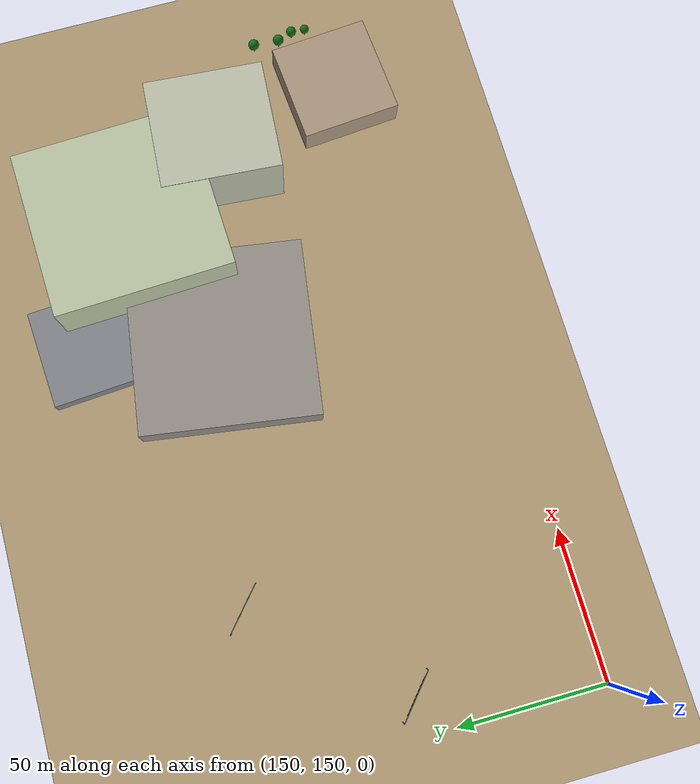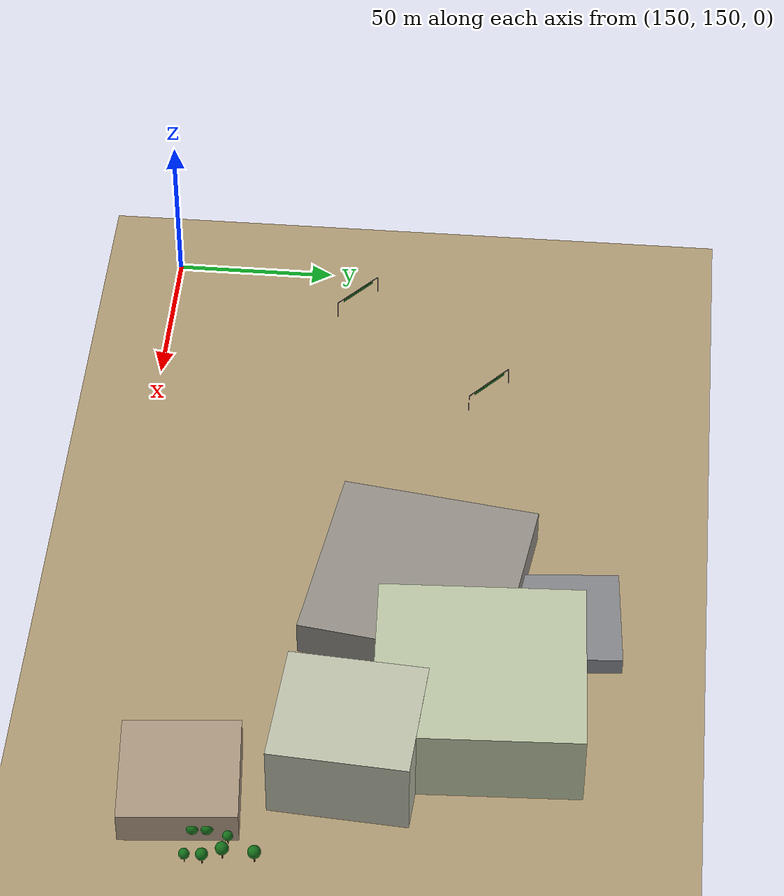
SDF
<sdf version="1.9">
 <world name="crossroad_world">
  <model name="ground_plane">
   <static>true</static>
   <pose>0 0 -0.05 0 0 0</pose>
   <link name="link">
    <collision name="collision">
     <geometry><plane><normal>0 0 1</normal><size>10000 10000</size></plane></geometry>
    </collision>
    <visual name="visual">
     <geometry><plane><normal>0 0 1</normal><size>15000 15000</size></plane></geometry>
     <material><ambient>0.68 0.60 0.45 1</ambient><diffuse>0.68 0.60 0.45 1</diffuse></material>
    </visual>
   </link>
  </model>
  <model name="gantry_70">
   <static>true</static>
   <pose>163.044 209.861 0 0 0 2.421</pose>
   <link name="link">
    <visual name="post_l">
     <pose>-8.900 0 2.925 0 0 0</pose>
     <geometry><cylinder><radius>0.1</radius><length>5.85</length></cylinder></geometry>
     <material><ambient>0.30 0.30 0.35 1</ambient><diffuse>0.30 0.30 0.35 1</diffuse></material>
    </visual>
    <visual name="post_r">
     <pose>8.900 0 2.925 0 0 0</pose>
     <geometry><cylinder><radius>0.1</radius><length>5.85</length></cylinder></geometry>
     <material><ambient>0.30 0.30 0.35 1</ambient><diffuse>0.30 0.30 0.35 1</diffuse></material>
    </visual>
    <visual name="beam">
     <pose>0 0 6.000 0 0 0</pose>
     <geometry><box><size>17.800 0.22 0.22</size></box></geometry>
     <material><ambient>0.30 0.30 0.35 1</ambient><diffuse>0.30 0.30 0.35 1</diffuse></material>
    </visual>
    <visual name="sign_border">
     <pose>0 -0.14 5.450 0 0 0</pose>
     <geometry><box><size>12.896 0.04 0.92</size></box></geometry>
     <material><ambient>0.90 0.85 0.10 1</ambient><diffuse>0.90 0.85 0.10 1</diffuse></material>
    </visual>
    <visual name="sign_panel">
     <pose>0 -0.15 5.450 0 0 0</pose>
     <geometry><box><size>12.816 0.05 0.86</size></box></geometry>
     <material><ambient>0.05 0.38 0.10 1</ambient><diffuse>0.05 0.38 0.10 1</diffuse></material>
    </visual>
    <collision name="col_post_l">
     <pose>-8.900 0 2.925 0 0 0</pose>
     <geometry><cylinder><radius>0.1</radius><length>5.85</length></cylinder></geometry>
    </collision>
    <collision name="col_post_r">
     <pose>8.900 0 2.925 0 0 0</pose>
     <geometry><cylinder><radius>0.1</radius><length>5.85</length></cylinder></geometry>
    </collision>
    <collision name="col_beam">
     <pose>0 0 6.000 0 0 0</pose>
     <geometry><box><size>17.800 0.22 0.22</size></box></geometry>
    </collision>
   </link>
  </model>
  <model name="gantry_71">
   <static>true</static>
   <pose>202.616 254.962 0 0 0 2.421</pose>
   <link name="link">
    <visual name="post_l">
     <pose>-8.900 0 2.925 0 0 0</pose>
     <geometry><cylinder><radius>0.1</radius><length>5.85</length></cylinder></geometry>
     <material><ambient>0.30 0.30 0.35 1</ambient><diffuse>0.30 0.30 0.35 1</diffuse></material>
    </visual>
    <visual name="post_r">
     <pose>8.900 0 2.925 0 0 0</pose>
     <geometry><cylinder><radius>0.1</radius><length>5.85</length></cylinder></geometry>
     <material><ambient>0.30 0.30 0.35 1</ambient><diffuse>0.30 0.30 0.35 1</diffuse></material>
    </visual>
    <visual name="beam">
     <pose>0 0 6.000 0 0 0</pose>
     <geometry><box><size>17.800 0.22 0.22</size></box></geometry>
     <material><ambient>0.30 0.30 0.35 1</ambient><diffuse>0.30 0.30 0.35 1</diffuse></material>
    </visual>
    <visual name="sign_border">
     <pose>0 -0.14 5.450 0 0 0</pose>
     <geometry><box><size>12.896 0.04 0.92</size></box></geometry>
     <material><ambient>0.90 0.85 0.10 1</ambient><diffuse>0.90 0.85 0.10 1</diffuse></material>
    </visual>
    <visual name="sign_panel">
     <pose>0 -0.15 5.450 0 0 0</pose>
     <geometry><box><size>12.816 0.05 0.86</size></box></geometry>
     <material><ambient>0.05 0.38 0.10 1</ambient><diffuse>0.05 0.38 0.10 1</diffuse></material>
    </visual>
    <collision name="col_post_l">
     <pose>-8.900 0 2.925 0 0 0</pose>
     <geometry><cylinder><radius>0.1</radius><length>5.85</length></cylinder></geometry>
    </collision>
    <collision name="col_post_r">
     <pose>8.900 0 2.925 0 0 0</pose>
     <geometry><cylinder><radius>0.1</radius><length>5.85</length></cylinder></geometry>
    </collision>
    <collision name="col_beam">
     <pose>0 0 6.000 0 0 0</pose>
     <geometry><box><size>17.800 0.22 0.22</size></box></geometry>
    </collision>
   </link>
  </model>
  <model name="tree_159">
   <static>true</static>
   <pose>379.648 188.375 0 0 0 0</pose>
   <link name="link">
    <visual name="trunk">
     <pose>0 0 1.375 0 0 0</pose>
     <geometry><cylinder><radius>0.120</radius><length>2.750</length></cylinder></geometry>
     <material><ambient>0.38 0.22 0.08 1</ambient><diffuse>0.38 0.22 0.08 1</diffuse></material>
    </visual>
    <visual name="canopy">
     <pose>0 0 3.812 0 0 0</pose>
     <geometry><sphere><radius>1.633</radius></sphere></geometry>
     <material><ambient>0.08 0.44 0.10 1</ambient><diffuse>0.08 0.44 0.10 1</diffuse></material>
    </visual>
    <collision name="col">
     <pose>0 0 1.375 0 0 0</pose>
     <geometry><cylinder><radius>0.120</radius><length>2.750</length></cylinder></geometry>
    </collision>
   </link>
  </model>
  <model name="tree_160">
   <static>true</static>
   <pose>385.208 183.469 0 0 0 0</pose>
   <link name="link">
    <visual name="trunk">
     <pose>0 0 1.648 0 0 0</pose>
     <geometry><cylinder><radius>0.144</radius><length>3.296</length></cylinder></geometry>
     <material><ambient>0.38 0.22 0.08 1</ambient><diffuse>0.38 0.22 0.08 1</diffuse></material>
    </visual>
    <visual name="canopy">
     <pose>0 0 4.568 0 0 0</pose>
     <geometry><sphere><radius>1.957</radius></sphere></geometry>
     <material><ambient>0.08 0.44 0.10 1</ambient><diffuse>0.08 0.44 0.10 1</diffuse></material>
    </visual>
    <collision name="col">
     <pose>0 0 1.648 0 0 0</pose>
     <geometry><cylinder><radius>0.144</radius><length>3.296</length></cylinder></geometry>
    </collision>
   </link>
  </model>
  <model name="tree_161">
   <static>true</static>
   <pose>384.889 187.532 0 0 0 0</pose>
   <link name="link">
    <visual name="trunk">
     <pose>0 0 1.640 0 0 0</pose>
     <geometry><cylinder><radius>0.144</radius><length>3.280</length></cylinder></geometry>
     <material><ambient>0.38 0.22 0.08 1</ambient><diffuse>0.38 0.22 0.08 1</diffuse></material>
    </visual>
    <visual name="canopy">
     <pose>0 0 4.546 0 0 0</pose>
     <geometry><sphere><radius>1.948</radius></sphere></geometry>
     <material><ambient>0.08 0.44 0.10 1</ambient><diffuse>0.08 0.44 0.10 1</diffuse></material>
    </visual>
    <collision name="col">
     <pose>0 0 1.640 0 0 0</pose>
     <geometry><cylinder><radius>0.144</radius><length>3.280</length></cylinder></geometry>
    </collision>
   </link>
  </model>
  <model name="tree_162">
   <static>true</static>
   <pose>386.394 193.479 0 0 0 0</pose>
   <link name="link">
    <visual name="trunk">
     <pose>0 0 1.240 0 0 0</pose>
     <geometry><cylinder><radius>0.108</radius><length>2.480</length></cylinder></geometry>
     <material><ambient>0.38 0.22 0.08 1</ambient><diffuse>0.38 0.22 0.08 1</diffuse></material>
    </visual>
    <visual name="canopy">
     <pose>0 0 3.437 0 0 0</pose>
     <geometry><sphere><radius>1.472</radius></sphere></geometry>
     <material><ambient>0.08 0.44 0.10 1</ambient><diffuse>0.08 0.44 0.10 1</diffuse></material>
    </visual>
    <collision name="col">
     <pose>0 0 1.240 0 0 0</pose>
     <geometry><cylinder><radius>0.108</radius><length>2.480</length></cylinder></geometry>
    </collision>
   </link>
  </model>
  <model name="tree_163">
   <static>true</static>
   <pose>393.717 182.173 0 0 0 0</pose>
   <link name="link">
    <visual name="trunk">
     <pose>0 0 1.321 0 0 0</pose>
     <geometry><cylinder><radius>0.116</radius><length>2.641</length></cylinder></geometry>
     <material><ambient>0.38 0.22 0.08 1</ambient><diffuse>0.38 0.22 0.08 1</diffuse></material>
    </visual>
    <visual name="canopy">
     <pose>0 0 3.661 0 0 0</pose>
     <geometry><sphere><radius>1.568</radius></sphere></geometry>
     <material><ambient>0.08 0.44 0.10 1</ambient><diffuse>0.08 0.44 0.10 1</diffuse></material>
    </visual>
    <collision name="col">
     <pose>0 0 1.321 0 0 0</pose>
     <geometry><cylinder><radius>0.116</radius><length>2.641</length></cylinder></geometry>
    </collision>
   </link>
  </model>
  <model name="tree_164">
   <static>true</static>
   <pose>393.794 187.128 0 0 0 0</pose>
   <link name="link">
    <visual name="trunk">
     <pose>0 0 1.493 0 0 0</pose>
     <geometry><cylinder><radius>0.131</radius><length>2.986</length></cylinder></geometry>
     <material><ambient>0.38 0.22 0.08 1</ambient><diffuse>0.38 0.22 0.08 1</diffuse></material>
    </visual>
    <visual name="canopy">
     <pose>0 0 4.139 0 0 0</pose>
     <geometry><sphere><radius>1.773</radius></sphere></geometry>
     <material><ambient>0.08 0.44 0.10 1</ambient><diffuse>0.08 0.44 0.10 1</diffuse></material>
    </visual>
    <collision name="col">
     <pose>0 0 1.493 0 0 0</pose>
     <geometry><cylinder><radius>0.131</radius><length>2.986</length></cylinder></geometry>
    </collision>
   </link>
  </model>
  <model name="tree_165">
   <static>true</static>
   <pose>391.584 192.535 0 0 0 0</pose>
   <link name="link">
    <visual name="trunk">
     <pose>0 0 1.617 0 0 0</pose>
     <geometry><cylinder><radius>0.141</radius><length>3.234</length></cylinder></geometry>
     <material><ambient>0.38 0.22 0.08 1</ambient><diffuse>0.38 0.22 0.08 1</diffuse></material>
    </visual>
    <visual name="canopy">
     <pose>0 0 4.482 0 0 0</pose>
     <geometry><sphere><radius>1.920</radius></sphere></geometry>
     <material><ambient>0.08 0.44 0.10 1</ambient><diffuse>0.08 0.44 0.10 1</diffuse></material>
    </visual>
    <collision name="col">
     <pose>0 0 1.617 0 0 0</pose>
     <geometry><cylinder><radius>0.141</radius><length>3.234</length></cylinder></geometry>
    </collision>
   </link>
  </model>
  <model name="tree_166">
   <static>true</static>
   <pose>392.096 201.530 0 0 0 0</pose>
   <link name="link">
    <visual name="trunk">
     <pose>0 0 1.602 0 0 0</pose>
     <geometry><cylinder><radius>0.140</radius><length>3.204</length></cylinder></geometry>
     <material><ambient>0.38 0.22 0.08 1</ambient><diffuse>0.38 0.22 0.08 1</diffuse></material>
    </visual>
    <visual name="canopy">
     <pose>0 0 4.441 0 0 0</pose>
     <geometry><sphere><radius>1.903</radius></sphere></geometry>
     <material><ambient>0.08 0.44 0.10 1</ambient><diffuse>0.08 0.44 0.10 1</diffuse></material>
    </visual>
    <collision name="col">
     <pose>0 0 1.602 0 0 0</pose>
     <geometry><cylinder><radius>0.140</radius><length>3.204</length></cylinder></geometry>
    </collision>
   </link>
  </model>
  <model name="building_92">
   <static>true</static>
   <pose>299.306 282.624 2.862 0 0 0.069</pose>
   <link name="link">
    <visual name="body">
     <geometry><box><size>33.50 33.74 5.72</size></box></geometry>
     <material><ambient>0.51 0.52 0.54 1</ambient><diffuse>0.51 0.52 0.54 1</diffuse></material>
    </visual>
    <collision name="col"><geometry><box><size>33.50 33.74 5.72</size></box></geometry></collision>
   </link>
  </model>
  <model name="building_93">
   <static>true</static>
   <pose>335.267 259.972 12.337 0 0 0.041</pose>
   <link name="link">
    <visual name="body">
     <geometry><box><size>57.24 60.00 24.67</size></box></geometry>
     <material><ambient>0.73 0.77 0.64 1</ambient><diffuse>0.73 0.77 0.64 1</diffuse></material>
    </visual>
    <collision name="col"><geometry><box><size>57.24 60.00 24.67</size></box></geometry></collision>
   </link>
  </model>
  <model name="building_118">
   <static>true</static>
   <pose>369.005 177.970 5.114 0 0 0.083</pose>
   <link name="link">
    <visual name="body">
     <geometry><box><size>34.83 34.06 10.23</size></box></geometry>
     <material><ambient>0.67 0.59 0.50 1</ambient><diffuse>0.67 0.59 0.50 1</diffuse></material>
    </visual>
    <collision name="col"><geometry><box><size>34.83 34.06 10.23</size></box></geometry></collision>
   </link>
  </model>
  <model name="building_526">
   <static>true</static>
   <pose>288.924 239.396 5.735 0 0 -0.146</pose>
   <link name="link">
    <visual name="body">
     <geometry><box><size>60.00 60.00 11.47</size></box></geometry>
     <material><ambient>0.58 0.56 0.53 1</ambient><diffuse>0.58 0.56 0.53 1</diffuse></material>
    </visual>
    <collision name="col"><geometry><box><size>60.00 60.00 11.47</size></box></geometry></collision>
   </link>
  </model>
  <model name="building_669">
   <static>true</static>
   <pose>356.364 224.268 12.415 0 0 -0.072</pose>
   <link name="link">
    <visual name="body">
     <geometry><box><size>37.85 40.45 24.83</size></box></geometry>
     <material><ambient>0.74 0.75 0.67 1</ambient><diffuse>0.74 0.75 0.67 1</diffuse></material>
    </visual>
    <collision name="col"><geometry><box><size>37.85 40.45 24.83</size></box></geometry></collision>
   </link>
  </model>
 </world>
</sdf>
